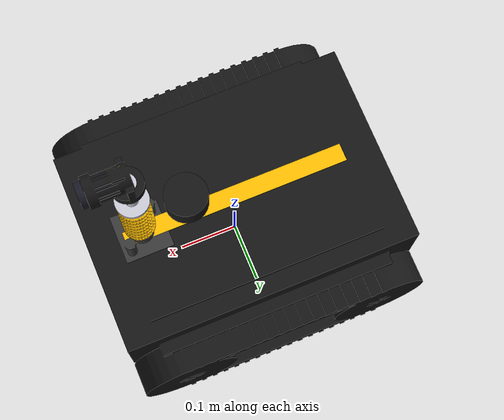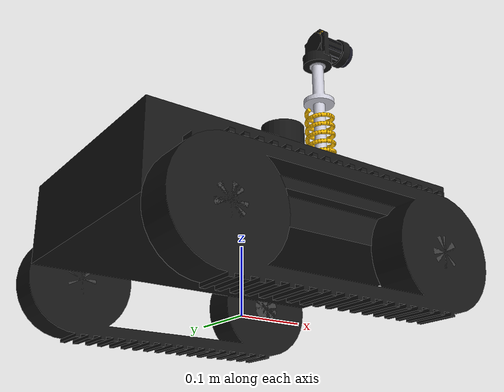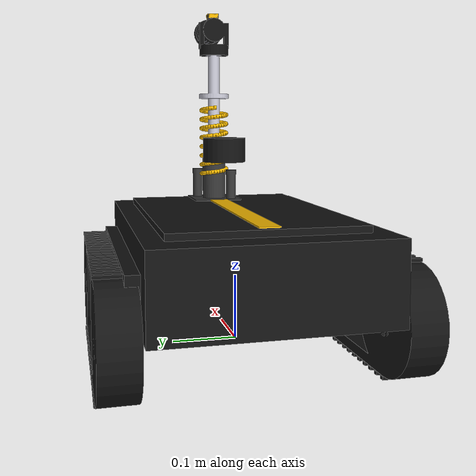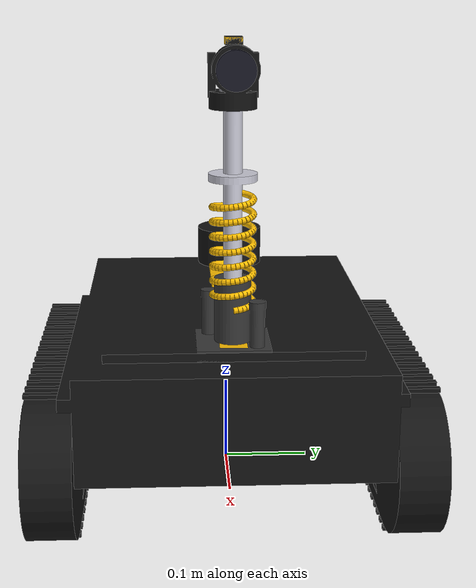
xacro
<?xml version="1.0"?>
<robot name="ugv_belt_drive" xmlns:xacro="http://www.ros.org/wiki/xacro">

  <!-- ============================ PROPERTIES ============================ -->
  <xacro:property name="PI" value="3.14159265359"/>

  <!-- Chassis -->
  <xacro:property name="chassis_length" value="0.50"/>
  <xacro:property name="chassis_width"  value="0.34"/>
  <xacro:property name="chassis_height" value="0.12"/>
  <xacro:property name="chassis_mass"   value="9.5"/>
  <xacro:property name="ground_clearance" value="0.07"/>

  <!-- Track / belt drive -->
  <xacro:property name="sprocket_radius" value="0.065"/>
  <xacro:property name="sprocket_width"  value="0.05"/>
  <xacro:property name="sprocket_mass"   value="0.6"/>
  <xacro:property name="track_separation" value="0.40"/>
  <xacro:property name="track_wheelbase"  value="0.34"/>

  <!-- Package Mesh URL Prefix -->
  <xacro:property name="mesh_pkg" value="package://ugv_belt_drive_ros2/meshes"/>

  <!-- ============================ MATERIALS ============================= -->
  <material name="matte_black">    <color rgba="0.08 0.08 0.08 1.0"/> </material>
  <material name="signal_yellow">  <color rgba="1.0 0.75 0.0 1.0"/>  </material>
  <material name="dark_grey">      <color rgba="0.22 0.22 0.22 1.0"/> </material>
  <material name="lens_glass">     <color rgba="0.1 0.1 0.15 0.95"/> </material>
  <material name="metallic_silver"><color rgba="0.80 0.80 0.85 1.0"/></material>

  <!-- ============================ INERTIA MACROS =========================== -->
  <xacro:macro name="box_inertia" params="mass x y z">
    <inertial>
      <mass value="${mass}"/>
      <inertia ixx="${mass/12.0*(y*y+z*z)}" ixy="0.0" ixz="0.0"
               iyy="${mass/12.0*(x*x+z*z)}" iyz="0.0"
               izz="${mass/12.0*(x*x+y*y)}"/>
    </inertial>
  </xacro:macro>

  <xacro:macro name="cylinder_inertia" params="mass r h">
    <inertial>
      <mass value="${mass}"/>
      <inertia ixx="${mass/12.0*(3*r*r+h*h)}" ixy="0.0" ixz="0.0"
               iyy="${mass/12.0*(3*r*r+h*h)}" iyz="0.0"
               izz="${mass*r*r/2.0}"/>
    </inertial>
  </xacro:macro>

  <!-- ============================ BASE FOOTPRINT ========================= -->
  <link name="base_footprint"/>

  <joint name="base_footprint_joint" type="fixed">
    <parent link="base_footprint"/>
    <child link="base_link"/>
    <origin xyz="0 0 ${ground_clearance + sprocket_radius}" rpy="0 0 0"/>
  </joint>

  <!-- ============================ CHASSIS ================================ -->
  <link name="base_link">
    <visual>
      <origin xyz="0 0 0" rpy="0 0 0"/>
      <geometry><mesh filename="${mesh_pkg}/ugv_chassis.dae"/></geometry>
      <material name="matte_black"/>
    </visual>
    <collision>
      <origin xyz="0 0 0.03" rpy="0 0 0"/>
      <geometry><box size="0.40 0.28 0.08"/></geometry>
    </collision>
    <xacro:box_inertia mass="${chassis_mass}" x="${chassis_length}" y="${chassis_width}" z="${chassis_height}"/>
  </link>

  <!-- Top Deck Accent Plate (Signal Yellow) -->
  <link name="deck_accent">
    <visual>
      <geometry><box size="0.38 0.03 0.008"/></geometry>
      <material name="signal_yellow"/>
    </visual>
  </link>
  <joint name="deck_accent_joint" type="fixed">
    <parent link="base_link"/>
    <child link="deck_accent"/>
    <origin xyz="0 0 ${chassis_height/2 + 0.008}" rpy="0 0 0"/>
  </joint>

  <!-- ============================ BELT-DRIVE TRACK MACRO ================= -->
  <xacro:macro name="track_side" params="side y_sign driven">
    <!-- Front sprocket -->
    <link name="${side}_front_sprocket">
      <visual>
        <origin xyz="0 0 0" rpy="0 0 0"/>
        <geometry><mesh filename="${mesh_pkg}/sprocket_wheel.dae"/></geometry>
        <material name="dark_grey"/>
      </visual>
      <collision>
        <origin xyz="0 0 0" rpy="${PI/2} 0 0"/>
        <geometry><cylinder radius="${sprocket_radius}" length="${sprocket_width}"/></geometry>
      </collision>
      <xacro:cylinder_inertia mass="${sprocket_mass}" r="${sprocket_radius}" h="${sprocket_width}"/>
    </link>

    <joint name="${side}_front_sprocket_joint" type="continuous">
      <parent link="base_link"/>
      <child link="${side}_front_sprocket"/>
      <origin xyz="${track_wheelbase/2} ${y_sign*(track_separation/2)} ${-ground_clearance}" rpy="0 0 0"/>
      <axis xyz="0 1 0"/>
      <limit effort="1000.0" velocity="50.0"/>
      <dynamics damping="0.01" friction="0.005"/>
    </joint>

    <gazebo reference="${side}_front_sprocket">
      <mu1>2.0</mu1>
      <mu2>2.0</mu2>
      <kp>10000000.0</kp>
      <kd>1.0</kd>
    </gazebo>

    <!-- Rear sprocket -->
    <link name="${side}_rear_sprocket">
      <visual>
        <origin xyz="0 0 0" rpy="0 0 0"/>
        <geometry><mesh filename="${mesh_pkg}/sprocket_wheel.dae"/></geometry>
        <material name="dark_grey"/>
      </visual>
      <collision>
        <origin xyz="0 0 0" rpy="${PI/2} 0 0"/>
        <geometry><cylinder radius="${sprocket_radius}" length="${sprocket_width}"/></geometry>
      </collision>
      <xacro:cylinder_inertia mass="${sprocket_mass}" r="${sprocket_radius}" h="${sprocket_width}"/>
    </link>

    <joint name="${side}_rear_sprocket_joint" type="continuous">
      <parent link="base_link"/>
      <child link="${side}_rear_sprocket"/>
      <origin xyz="${-track_wheelbase/2} ${y_sign*(track_separation/2)} ${-ground_clearance}" rpy="0 0 0"/>
      <axis xyz="0 1 0"/>
      <limit effort="1000.0" velocity="50.0"/>
      <dynamics damping="0.01" friction="0.005"/>
    </joint>

    <gazebo reference="${side}_rear_sprocket">
      <mu1>2.0</mu1>
      <mu2>2.0</mu2>
      <kp>10000000.0</kp>
      <kd>1.0</kd>
    </gazebo>

    <!-- Track Belt Shell (Visual only to avoid ground drag) -->
    <link name="${side}_belt">
      <visual>
        <origin xyz="0 0 ${-ground_clearance}" rpy="0 0 0"/>
        <geometry><mesh filename="${mesh_pkg}/track_belt.dae"/></geometry>
        <material name="matte_black"/>
      </visual>
      <inertial>
        <mass value="0.2"/>
        <inertia ixx="0.001" ixy="0" ixz="0" iyy="0.001" iyz="0" izz="0.001"/>
      </inertial>
    </link>
    <joint name="${side}_belt_joint" type="fixed">
      <parent link="base_link"/>
      <child link="${side}_belt"/>
      <origin xyz="0 ${y_sign*(track_separation/2)} 0" rpy="0 0 0"/>
    </joint>

    <xacro:if value="${driven}">
      <transmission name="${side}_front_trans">
        <type>transmission_interface/SimpleTransmission</type>
        <joint name="${side}_front_sprocket_joint">
          <hardwareInterface>hardware_interface/VelocityJointInterface</hardwareInterface>
        </joint>
        <actuator name="${side}_front_motor">
          <hardwareInterface>hardware_interface/VelocityJointInterface</hardwareInterface>
          <mechanicalReduction>1</mechanicalReduction>
        </actuator>
      </transmission>
    </xacro:if>
  </xacro:macro>

  <xacro:track_side side="left"  y_sign="1"  driven="true"/>
  <xacro:track_side side="right" y_sign="-1" driven="true"/>

  <!-- ============================ LOWERED CoG BATTERY & ELECTRONICS ======= -->
  <link name="battery_pack">
    <visual><geometry><box size="0.18 0.12 0.055"/></geometry><material name="matte_black"/></visual>
    <collision><geometry><box size="0.18 0.12 0.055"/></geometry></collision>
    <xacro:box_inertia mass="2.4" x="0.18" y="0.12" z="0.055"/>
  </link>
  <joint name="battery_pack_joint" type="fixed">
    <parent link="base_link"/>
    <child link="battery_pack"/>
    <origin xyz="0.06 0 -0.02" rpy="0 0 0"/>
  </joint>

  <link name="electronics_box">
    <visual><geometry><box size="0.16 0.20 0.055"/></geometry><material name="signal_yellow"/></visual>
    <collision><geometry><box size="0.16 0.20 0.055"/></geometry></collision>
    <xacro:box_inertia mass="1.3" x="0.16" y="0.20" z="0.055"/>
  </link>
  <joint name="electronics_box_joint" type="fixed">
    <parent link="base_link"/>
    <child link="electronics_box"/>
    <origin xyz="-0.08 0 -0.02" rpy="0 0 0"/>
  </joint>

  <!-- ============================ MAIN CHASSIS IMU ======================== -->
  <link name="imu_link">
    <visual><geometry><box size="0.03 0.03 0.01"/></geometry><material name="signal_yellow"/></visual>
    <collision><geometry><box size="0.03 0.03 0.01"/></geometry></collision>
    <xacro:box_inertia mass="0.05" x="0.03" y="0.03" z="0.01"/>
  </link>
  <joint name="imu_joint" type="fixed">
    <parent link="base_link"/>
    <child link="imu_link"/>
    <origin xyz="0 0 ${chassis_height/2 + 0.005}" rpy="0 0 0"/>
  </joint>

  <!-- ============================ 360 LiDAR =============================== -->
  <link name="lidar_link">
    <visual>
      <geometry><cylinder radius="0.035" length="0.04"/></geometry>
      <material name="matte_black"/>
    </visual>
    <collision>
      <geometry><cylinder radius="0.035" length="0.04"/></geometry>
    </collision>
    <xacro:cylinder_inertia mass="0.15" r="0.035" h="0.04"/>
  </link>
  <joint name="lidar_joint" type="fixed">
    <parent link="base_link"/>
    <child link="lidar_link"/>
    <origin xyz="0.08 0 ${chassis_height/2 + 0.10}" rpy="0 0 0"/>
  </joint>

  <gazebo reference="lidar_link">
    <sensor name="lidar_sensor" type="gpu_lidar">
      <always_on>true</always_on>
      <update_rate>20</update_rate>
      <topic>/scan</topic>
      <gz_frame_id>lidar_link</gz_frame_id>
      <ray>
        <scan>
          <horizontal>
            <samples>360</samples>
            <resolution>1</resolution>
            <min_angle>-3.14159</min_angle>
            <max_angle>3.14159</max_angle>
          </horizontal>
        </scan>
        <range>
          <min>0.30</min>
          <max>25.0</max>
          <resolution>0.01</resolution>
        </range>
      </ray>
    </sensor>
  </gazebo>

  <!-- ============================ CAMERA MAST SUSPENSION ================== -->
  <link name="camera_suspension_housing">
    <visual>
      <origin xyz="0 0 0" rpy="0 0 0"/>
      <geometry><mesh filename="${mesh_pkg}/camera_suspension_base.dae"/></geometry>
      <material name="dark_grey"/>
    </visual>
    <collision>
      <origin xyz="0 0 0.035" rpy="0 0 0"/>
      <geometry><cylinder radius="0.022" length="0.070"/></geometry>
    </collision>
    <xacro:cylinder_inertia mass="0.30" r="0.022" h="0.070"/>
  </link>
  <joint name="camera_suspension_housing_joint" type="fixed">
    <parent link="base_link"/>
    <child link="camera_suspension_housing"/>
    <origin xyz="0.16 0 ${chassis_height/2 + 0.006}" rpy="0 0 0"/>
  </joint>

  <link name="camera_suspension_piston">
    <visual>
      <origin xyz="0 0 0" rpy="0 0 0"/>
      <geometry><mesh filename="${mesh_pkg}/camera_suspension_piston.dae"/></geometry>
      <material name="metallic_silver"/>
    </visual>
    <collision>
      <origin xyz="0 0 0.12" rpy="0 0 0"/>
      <geometry><cylinder radius="0.012" length="0.24"/></geometry>
    </collision>
    <xacro:cylinder_inertia mass="0.20" r="0.012" h="0.24"/>
  </link>

  <joint name="camera_mast_joint" type="prismatic">
    <parent link="camera_suspension_housing"/>
    <child link="camera_suspension_piston"/>
    <origin xyz="0 0 0.035" rpy="0 0 0"/>
    <axis xyz="0 0 1"/>
    <limit lower="-0.035" upper="0.010" effort="150.0" velocity="1.5"/>
    <dynamics damping="45.0" spring_stiffness="1350.0" spring_reference="0.0"/>
  </joint>

  <gazebo reference="camera_mast_joint">
    <implicitSpringDamper>true</implicitSpringDamper>
    <springStiffness>1350.0</springStiffness>
    <dampingFactor>45.0</dampingFactor>
  </gazebo>

  <link name="camera_suspension_spring">
    <visual>
      <origin xyz="0 0 0" rpy="0 0 0"/>
      <geometry><mesh filename="${mesh_pkg}/camera_suspension_spring.dae"/></geometry>
      <material name="signal_yellow"/>
    </visual>
  </link>
  <joint name="camera_suspension_spring_joint" type="fixed">
    <parent link="camera_suspension_piston"/>
    <child link="camera_suspension_spring"/>
    <origin xyz="0 0 0" rpy="0 0 0"/>
  </joint>

  <!-- ============================ ROVER PAN-TILT CAMERA HEAD ============ -->
  <link name="camera_gimbal_head">
    <visual>
      <origin xyz="0 0 0" rpy="0 0 0"/>
      <geometry><mesh filename="${mesh_pkg}/camera_gimbal_head.dae"/></geometry>
      <material name="matte_black"/>
    </visual>
    <collision>
      <origin xyz="0.02 0 0.035" rpy="0 0 0"/>
      <geometry><box size="0.06 0.05 0.05"/></geometry>
    </collision>
    <xacro:box_inertia mass="0.18" x="0.06" y="0.05" z="0.05"/>
  </link>

  <joint name="camera_pan_joint" type="revolute">
    <parent link="camera_suspension_piston"/>
    <child link="camera_gimbal_head"/>
    <origin xyz="0 0 0.23" rpy="0 0 0"/>
    <axis xyz="0 0 1"/>
    <limit lower="${-PI}" upper="${PI}" effort="2.5" velocity="2.5"/>
    <dynamics damping="0.1"/>
  </joint>

  <link name="camera_link">
    <visual>
      <origin xyz="0.02 0 0" rpy="0 ${PI/2} 0"/>
      <geometry><cylinder radius="0.020" length="0.055"/></geometry>
      <material name="lens_glass"/>
    </visual>
    <collision>
      <origin xyz="0.02 0 0" rpy="0 ${PI/2} 0"/>
      <geometry><cylinder radius="0.020" length="0.055"/></geometry>
    </collision>
    <xacro:cylinder_inertia mass="0.06" r="0.020" h="0.055"/>
  </link>

  <joint name="camera_joint" type="fixed">
    <parent link="camera_gimbal_head"/>
    <child link="camera_link"/>
    <origin xyz="0.02 0 0.035" rpy="0 0 0"/>
  </joint>

  <link name="camera_imu_link">
    <visual><geometry><box size="0.018 0.018 0.008"/></geometry><material name="signal_yellow"/></visual>
    <collision><geometry><box size="0.018 0.018 0.008"/></geometry></collision>
    <xacro:box_inertia mass="0.01" x="0.018" y="0.018" z="0.008"/>
  </link>
  <joint name="camera_imu_joint" type="fixed">
    <parent link="camera_gimbal_head"/>
    <child link="camera_imu_link"/>
    <origin xyz="0.01 0 0.060" rpy="0 0 0"/>
  </joint>

  <gazebo reference="camera_imu_link">
    <sensor type="imu" name="camera_imu_sensor">
      <always_on>true</always_on>
      <update_rate>100</update_rate>
      <topic>/camera/imu/data</topic>
      <gz_frame_id>camera_imu_link</gz_frame_id>
      <plugin name="camera_imu_plugin" filename="libgazebo_ros_imu_sensor.so">
        <ros><remapping>~/out:=camera/imu/data</remapping></ros>
        <frame_name>camera_imu_link</frame_name>
      </plugin>
    </sensor>
  </gazebo>

  <!-- Optical frame (REP-103) -->
  <link name="camera_optical_frame"/>
  <joint name="camera_optical_joint" type="fixed">
    <parent link="camera_link"/>
    <child link="camera_optical_frame"/>
    <origin xyz="0.03 0 0" rpy="${-PI/2} 0 ${-PI/2}"/>
  </joint>

  <gazebo reference="camera_link">
    <sensor type="rgbd_camera" name="rover_camera">
      <pose>0.08 0 0 0 0 0</pose>
      <always_on>true</always_on>
      <update_rate>30</update_rate>
      <camera name="head">
        <horizontal_fov>1.4</horizontal_fov>
        <image>
          <width>1280</width>
          <height>720</height>
          <format>R8G8B8</format>
        </image>
        <clip>
          <near>0.05</near>
          <far>100.0</far>
        </clip>
        <depth_camera>
          <clip>
            <near>0.1</near>
            <far>25.0</far>
          </clip>
        </depth_camera>
      </camera>
      <topic>/camera</topic>
      <gz_frame_id>camera_optical_frame</gz_frame_id>
    </sensor>
  </gazebo>

  <!-- Transmissions -->
  <transmission name="camera_pan_trans">
    <type>transmission_interface/SimpleTransmission</type>
    <joint name="camera_pan_joint">
      <hardwareInterface>hardware_interface/PositionJointInterface</hardwareInterface>
    </joint>
    <actuator name="camera_pan_motor">
      <hardwareInterface>hardware_interface/PositionJointInterface</hardwareInterface>
      <mechanicalReduction>1</mechanicalReduction>
    </actuator>
  </transmission>

  <gazebo reference="imu_link">
    <sensor type="imu" name="imu_sensor">
      <always_on>true</always_on>
      <update_rate>100</update_rate>
      <topic>/imu/data</topic>
      <gz_frame_id>imu_link</gz_frame_id>
      <plugin name="imu_plugin" filename="libgazebo_ros_imu_sensor.so">
        <ros><remapping>~/out:=imu/data</remapping></ros>
        <frame_name>imu_link</frame_name>
      </plugin>
    </sensor>
  </gazebo>

  <!-- ============================ 4-SPROCKET SKID-STEER DRIVE ============= -->
  <gazebo>
    <!-- Unified 4-Sprocket Skid-Steer Drive System -->
    <plugin filename="gz-sim-diff-drive-system" name="gz::sim::systems::DiffDrive">
      <left_joint>left_front_sprocket_joint</left_joint>
      <left_joint>left_rear_sprocket_joint</left_joint>
      <right_joint>right_front_sprocket_joint</right_joint>
      <right_joint>right_rear_sprocket_joint</right_joint>
      <wheel_separation>${track_separation}</wheel_separation>
      <wheel_radius>${sprocket_radius}</wheel_radius>
      <max_linear_acceleration>10.0</max_linear_acceleration>
      <max_angular_acceleration>12.0</max_angular_acceleration>
      <max_linear_velocity>3.5</max_linear_velocity>
      <min_linear_velocity>-3.5</min_linear_velocity>
      <max_angular_velocity>4.5</max_angular_velocity>
      <min_angular_velocity>-4.5</min_angular_velocity>
      <topic>/cmd_vel</topic>
    </plugin>

    <!-- Real 3D Physical Ground-Truth Odometry (Synchronizes Gazebo physics 1:1 with RViz & Camera) -->
    <plugin filename="gz-sim-odometry-publisher-system" name="gz::sim::systems::OdometryPublisher">
      <odom_topic>/odom</odom_topic>
      <odom_frame>odom</odom_frame>
      <robot_base_frame>base_footprint</robot_base_frame>
      <odom_publish_frequency>50</odom_publish_frequency>
      <dimensions>3</dimensions>
    </plugin>

    <plugin filename="gz-sim-joint-state-publisher-system" name="gz::sim::systems::JointStatePublisher">
      <topic>/joint_states</topic>
      <update_rate>30</update_rate>
    </plugin>
  </gazebo>

</robot>
